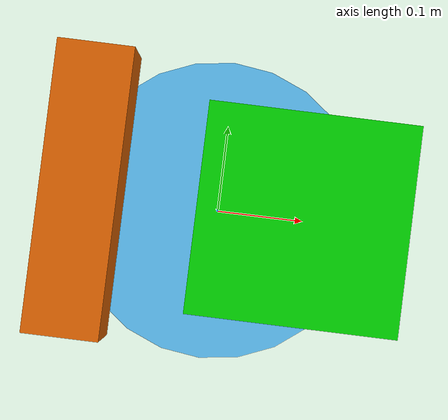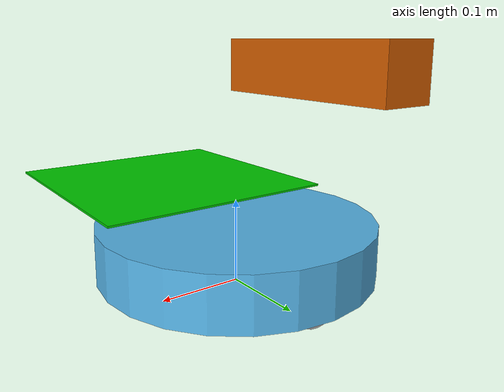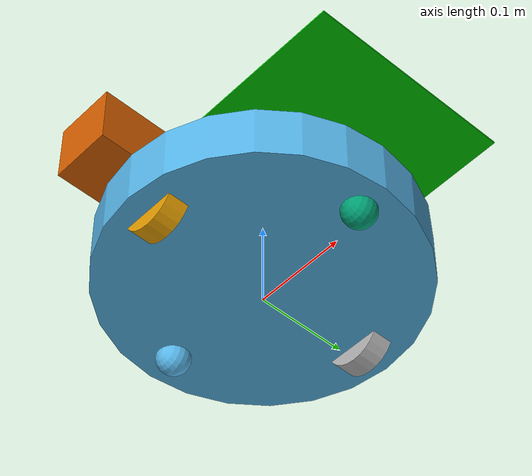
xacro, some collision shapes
<?xml version="1.0"?>

<robot name="pharos1"
    xmlns:sensor="http://playerstage.sourceforge.net/gazebo/xmlschema/#sensor"
    xmlns:controller="http://playerstage.sourceforge.net/gazebo/xmlschema/#controller"
    xmlns:interface="http://playerstage.sourceforge.net/gazebo/xmlschema/#interface">

  <material name="Green">
    <color rgba="0.0 0.8 0.0 1.0"/>
  </material>

  <property name="M_PI" value="3.14159"/>
  <property name="SCALE" value="0.0254"/>
  <property name="base_x" value="0.33" />
  <property name="base_y" value="0.33" />

  <!-- base_footprint is a fictitious link(frame) that is on the ground right below base_link origin, navigation stack depends on this frame -->

  <link name="base_footprint">
    <inertial>
      <mass value="0.0001" />
      <origin xyz="0 0 0" />
      <inertia ixx="0.0001" ixy="0.0" ixz="0.0"
              iyy="0.0001" iyz="0.0"
              izz="0.0001" />
    </inertial>

    <visual>
      <origin xyz="0 0 0" rpy="0 0 0" />
      <geometry>
        <box size="0.001 0.001 0.001" />
      </geometry>
      <material name="Green" />
    </visual>

    <collision>
      <origin xyz="0 0 0.017" rpy="0 0 0" />
      <geometry>
       <box size="0.001 0.001 0.001" />
      </geometry>
    </collision>
  </link>

  <link name="base_link">
    <inertial>
      <mass value="1" />
      <origin xyz="0 0 0.0308" />
      <inertia ixx="1.0" ixy="0.0" ixz="0.0"
        iyy="1.0" iyz="0.0" izz="1.0" />
    </inertial>

    <visual>
      <origin xyz=" 0 0 0.0308" rpy="0 0 0" />
      <geometry>
        <mesh filename="package://turtlebot_description/meshes/create_body.dae"/>
      </geometry>
    </visual>

    <collision>
      <origin xyz="0.0 0.0 0.0308" rpy="0 0 0" />
      <geometry>
        <cylinder length="0.0611632" radius="0.16495"/>
      </geometry>
    </collision>
  </link>

  <link name="wall_sensor_link">
    <inertial>
      <mass value="0.01" />
      <origin xyz="0 0 0"/>
      <inertia ixx="1.0" ixy="0.0" ixz="0.0"
        iyy="1.0" iyz="0.0" izz="1.0" />
    </inertial>
  </link>

  <link name="left_cliff_sensor_link">
    <inertial>
      <mass value="0.01" />
      <origin xyz="0 0 0"/>
      <inertia ixx="1.0" ixy="0.0" ixz="0.0"
        iyy="1.0" iyz="0.0" izz="1.0" />
    </inertial>
  </link>

  <link name="right_cliff_sensor_link">
    <inertial>
      <mass value="0.01" />
      <origin xyz="0 0 0"/>
      <inertia ixx="1.0" ixy="0.0" ixz="0.0"
        iyy="1.0" iyz="0.0" izz="1.0" />
    </inertial>
  </link>

  <link name="leftfront_cliff_sensor_link">
    <inertial>
      <mass value="0.01" />
      <origin xyz="0 0 0"/>
      <inertia ixx="1.0" ixy="0.0" ixz="0.0"
        iyy="1.0" iyz="0.0" izz="1.0" />
    </inertial>
  </link>

  <link name="rightfront_cliff_sensor_link">
    <inertial>
      <mass value="0.01" />
      <origin xyz="0 0 0"/>
      <inertia ixx="1.0" ixy="0.0" ixz="0.0"
        iyy="1.0" iyz="0.0" izz="1.0" />
    </inertial>
  </link>

  <joint name="base_footprint_joint" type="fixed">
    <origin xyz="0 0 0.017" rpy="0 0 0" />
    <parent link="base_footprint"/>
    <child link="base_link" />
  </joint>

  <joint name="base_wall_sensor_joint" type="fixed">
    <origin xyz="0.09 -0.120 0.042" rpy="0 0 -1.0" />
    <parent link="base_link"/>
    <child link="wall_sensor_link" />
  </joint>

  <joint name="base_left_cliff_sensor_joint" type="fixed">
    <origin xyz="0.07 0.14 0.01" rpy="0 1.57079 0" />
    <parent link="base_link"/>
    <child link="left_cliff_sensor_link" />
  </joint>

  <joint name="base_right_cliff_sensor_joint" type="fixed">
    <origin xyz="0.07 -0.14 0.01" rpy="0 1.57079 0" />
    <parent link="base_link"/>
    <child link="right_cliff_sensor_link" />
  </joint>

  <joint name="base_leftfront_cliff_sensor_joint" type="fixed">
    <origin xyz="0.15 0.04 0.01" rpy="0 1.57079 0" />
    <parent link="base_link"/>
    <child link="leftfront_cliff_sensor_link" />
  </joint>

  <joint name="base_rightfront_cliff_sensor_joint" type="fixed">
    <origin xyz="0.15 -0.04 0.01" rpy="0 1.57079 0" />
    <parent link="base_link"/>
    <child link="rightfront_cliff_sensor_link" />
  </joint>

  <link name="left_wheel_link">
    <inertial>
      <origin xyz="0 0 0"/>
      <mass value="0.01" />
      <inertia ixx="1.0" ixy="0.0" ixz="0.0"
        iyy="1.0" iyz="0.0" izz="1.0" />
    </inertial>

    <visual>
      <origin xyz="0 0 0" rpy="0 1.5707 1.5707" />
      <geometry>
        <cylinder radius="0.033" length = "0.023"/>
      </geometry>
    </visual>

    <collision>
      <origin xyz="0 0 0" rpy="0 1.5707 1.5707" />
      <geometry>
        <cylinder radius="0.033" length = "0.023"/>
      </geometry>
    </collision>
  </link>

  <joint name="left_wheel_joint" type="continuous">
    <origin xyz="0 0.13 0.015" rpy="0 0 0"/>
    <parent link="base_link"/>
    <child link="left_wheel_link"/>
    <axis xyz="0 1 0"/>
  </joint>

  <link name="right_wheel_link">
    <inertial>
      <origin xyz="0 0 0"/>
      <mass value="0.01" />
      <inertia ixx="1.0" ixy="0.0" ixz="0.0"
        iyy="1.0" iyz="0.0" izz="1.0" />
    </inertial>

    <visual>
      <origin xyz="0 0 0" rpy="0 1.5707 1.5707" />
      <geometry>
        <cylinder radius="0.033" length = "0.023"/>
      </geometry>
    </visual>

    <collision>
      <origin xyz="0 0 0" rpy="0 1.5707 1.5707" />
      <geometry>
        <cylinder radius="0.033" length = "0.023"/>
      </geometry>
    </collision>
  </link>

  <joint name="right_wheel_joint" type="continuous">
    <origin xyz="0 -0.13 0.015" rpy="0 0 0"/>
    <parent link="base_link"/>
    <child link="right_wheel_link"/>
    <axis xyz="0 1 0"/>
  </joint>

  <link name="rear_wheel_link">
    <inertial>
      <origin xyz="0 0 0"/>
      <mass value="0.001" />
      <inertia ixx="1.0" ixy="0.0" ixz="0.0"
        iyy="1.0" iyz="0.0" izz="1.0" />
    </inertial>

    <visual>
      <origin xyz="0 0 0" rpy="0 1.5707 1.5707"/>
      <geometry>
        <sphere radius="0.018" />
      </geometry>
    </visual>

    <collision>
      <origin xyz="0 0 0" rpy="0 1.5707 1.5707" />
      <geometry>
        <sphere radius="0.018" />
      </geometry>
    </collision>
  </link>
  <joint name="rear_castor_joint" type="fixed">
    <origin xyz="-0.13 0 0.0" rpy="0 0 0"/>
    <parent link="base_link"/>
    <child link="rear_wheel_link"/>
    <axis xyz="0 1 0"/>
  </joint>

  <link name="front_wheel_link">
    <inertial>
      <origin xyz="0 0 0" />
      <mass value="0.01" />
      <inertia ixx="1.0" ixy="0.0" ixz="0.0"
        iyy="1.0" iyz="0.0" izz="1.0" />
    </inertial>

    <visual>
      <origin xyz="0 0 0" rpy="0 1.5707 1.5707"/>
      <geometry>
        <sphere radius="0.018" />
      </geometry>
    </visual>

    <collision>
      <origin xyz="0 0 0" rpy="0 1.5707 1.5707" />
      <geometry>
        <sphere radius="0.018" />
      </geometry>
    </collision>
  </link>

  <joint name="front_castor_joint" type="continuous">
    <origin xyz="0.13 0 0.0" rpy="0 0 0"/>
    <parent link="base_link"/>
    <child link="front_wheel_link"/>
    <axis xyz="0 1 0"/>
  </joint>

  <joint name="gyro_joint" type="fixed">
    <origin xyz="0 0 0.04" rpy="0 0 0" />
    <parent link="base_link" />
    <child link="gyro_link" />
  </joint>

  <link name="gyro_link">
    <visual>
      <geometry>
        <box size="0.02 0.035 0.002" />
      </geometry>
      <material name="Green" />
    </visual>
    <inertial>
      <mass value="0.000001" />
      <origin xyz="0 0 0" />
      <inertia ixx="0.0001" ixy="0.0" ixz="0.0"
        iyy="0.0001" iyz="0.0"
        izz="0.0001" />
    </inertial>
  </link>

  <joint name="base_marker_joint" type="fixed">
    <origin xyz="0.093 0 0.123" rpy="0 0 0" />
    <parent link="base_link" />
    <child link="marker_link" />
  </joint>

  <link name="marker_link">
    <visual>
      <geometry>
        <box size="0.228 0.228 0.002" />
      </geometry>
      <material name="Green" />
    </visual>
    <inertial>
      <mass value="0.000001" />
      <origin xyz="0 0 0" />
      <inertia ixx="0.0001" ixy="0.0" ixz="0.0"
        iyy="0.0001" iyz="0.0"
        izz="0.0001" />
    </inertial>
  </link>

  <joint name="base_kinect_joint" type="fixed">
    <origin xyz="-0.127 0 0.233" rpy="0 0 0" />
    <parent link="base_link" />
    <child link="kinect_link" />
  </joint>

  <link name="kinect_link">
    <inertial>
      <mass value="0.00001" />
      <origin xyz="0 0 0" />
      <inertia ixx="1.0" ixy="0.0" ixz="0.0"
        iyy="1.0" iyz="0.0"
        izz="1.0" />
    </inertial>

    <visual>
      <origin xyz=" 0 0 0 " rpy="0 0 0" />
      <geometry>
        <mesh filename="package://turtlebot_description/meshes/kinect.dae"/>
      </geometry>
    </visual>

    <collision>
      <origin xyz="0.0 0.0 0.0" rpy="0 0 0" />
      <geometry>
        <box size="0.0730 .2760 0.0720"/>
      </geometry>
    </collision>

  </link>

  <joint name="kinect_depth_joint" type="fixed">
    <origin xyz="0 0.018 0" rpy="0 0 0" />
    <parent link="kinect_link" />
    <child link="kinect_depth_frame" />
  </joint>

  <link name="kinect_depth_frame">
    <inertial>
      <mass value="0.000001" />
      <origin xyz="0 0 0" />
      <inertia ixx="0.0001" ixy="0.0" ixz="0.0"
        iyy="0.0001" iyz="0.0"
        izz="0.0001" />
    </inertial>
  </link>

  <joint name="kinect_depth_optical_joint" type="fixed">
    <origin xyz="0 0 0" rpy="${-M_PI/2} 0 ${-M_PI/2}" />
    <parent link="kinect_depth_frame" />
    <child link="kinect_depth_optical_frame" />
  </joint>

  <link name="kinect_depth_optical_frame">
    <inertial>
      <mass value="0.000001" />
      <origin xyz="0 0 0" />
      <inertia ixx="0.0001" ixy="0.0" ixz="0.0"
        iyy="0.0001" iyz="0.0"
        izz="0.0001" />
    </inertial>
  </link>

  <joint name="kinect_rgb_joint" type="fixed">
    <origin xyz="0 -0.005 0" rpy="0 0 0" />
    <parent link="kinect_link" />
    <child link="kinect_rgb_frame" />
  </joint>

  <link name="kinect_rgb_frame">
    <inertial>
      <mass value="0.000001" />
      <origin xyz="0 0 0" />
      <inertia ixx="0.0001" ixy="0.0" ixz="0.0"
        iyy="0.0001" iyz="0.0"
        izz="0.0001" />
    </inertial>
  </link>

  <joint name="kinect_rgb_optical_joint" type="fixed">
    <origin xyz="0 0 0" rpy="${-M_PI/2} 0 ${-M_PI/2}" />
    <parent link="kinect_rgb_frame" />
    <child link="kinect_rgb_optical_frame" />
  </joint>

  <link name="kinect_rgb_optical_frame">
    <inertial>
      <mass value="0.000001" />
      <origin xyz="0 0 0" />
      <inertia ixx="0.0001" ixy="0.0" ixz="0.0"
        iyy="0.0001" iyz="0.0"
        izz="0.0001" />
    </inertial>
  </link>

</robot>
